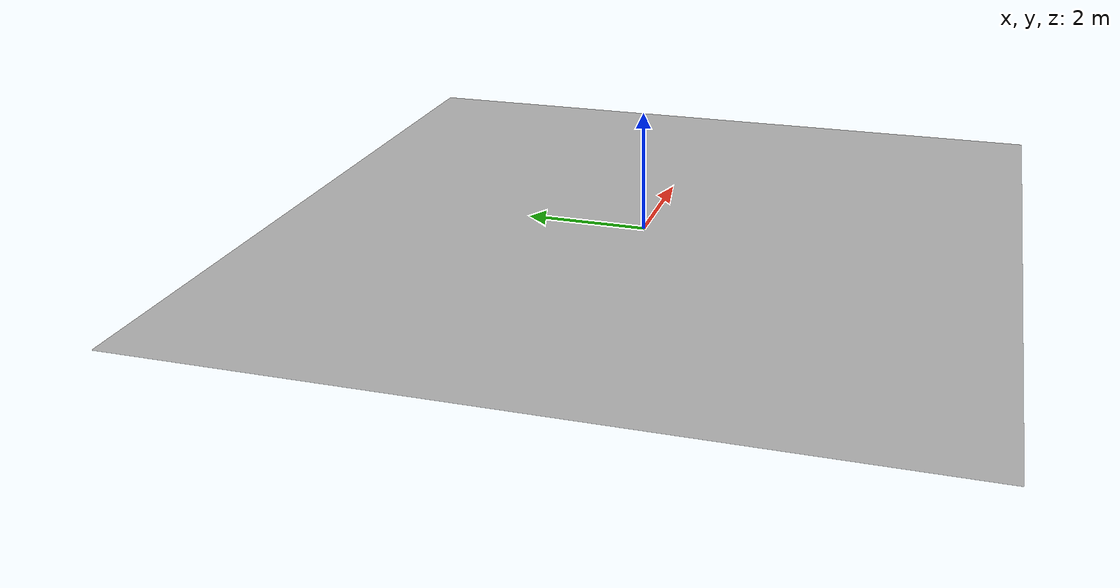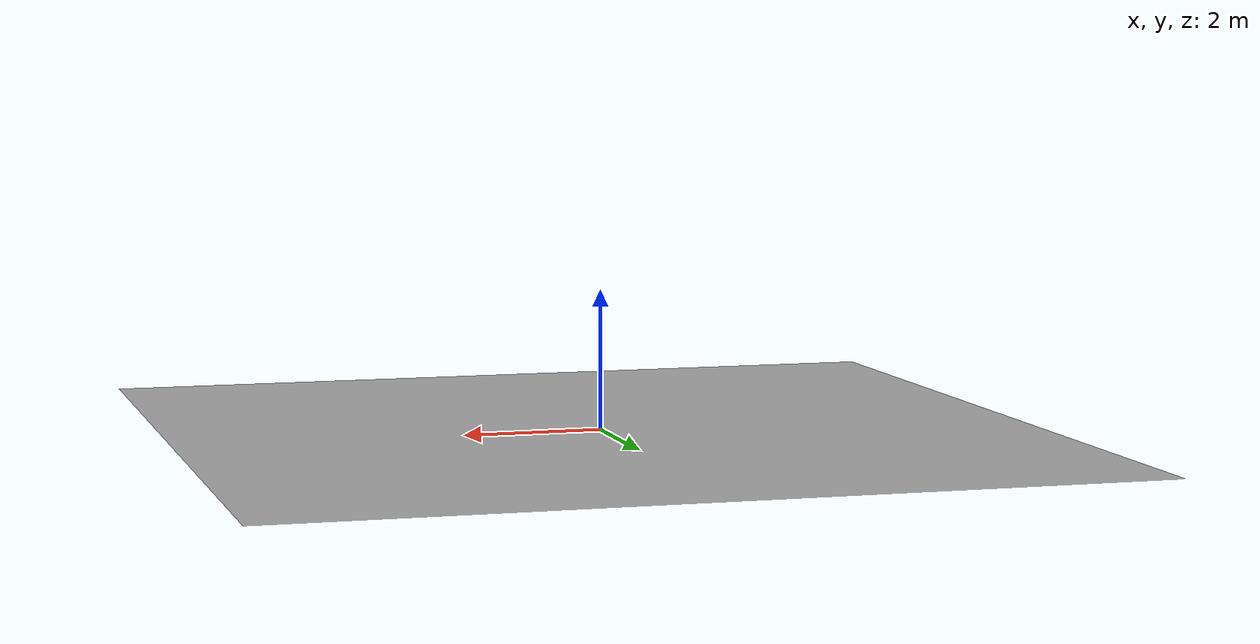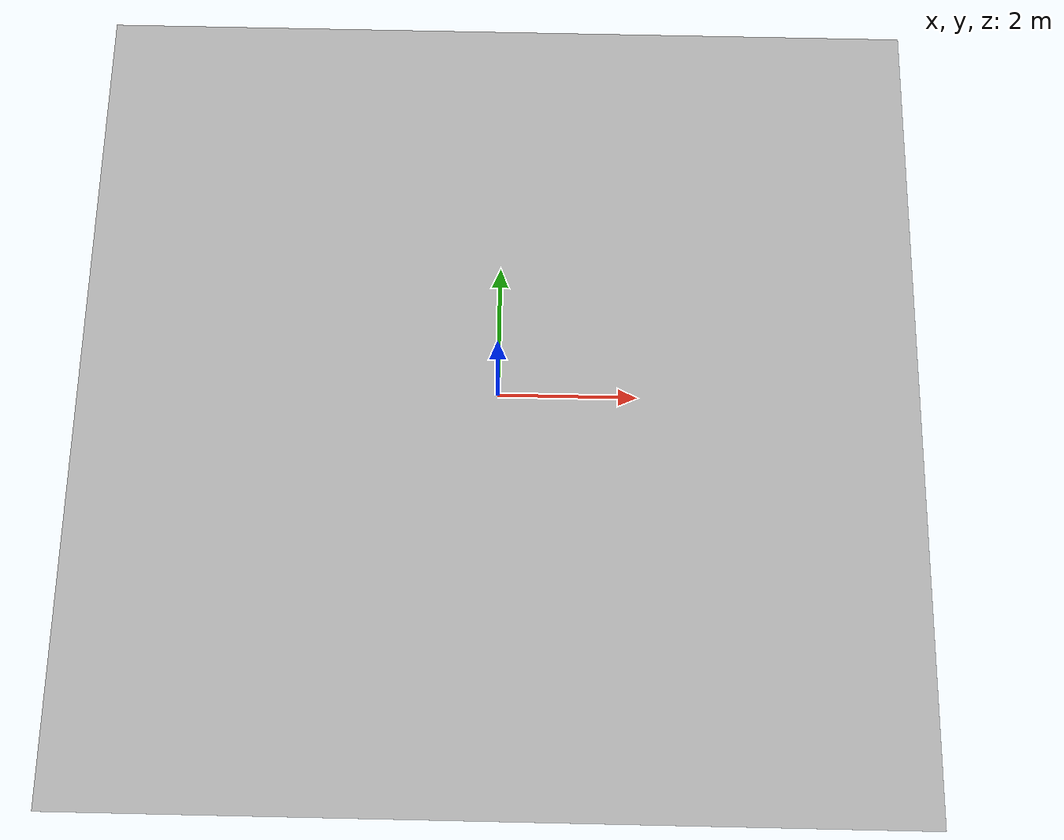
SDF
<?xml version='1.0'?>
<sdf version='1.8'>
  <model name='arena_terrain'>
    <static>1</static>
    <link name="link">
      <collision name="floor_collision">
        <geometry>
          <plane>
            <normal>0 0 1</normal>
            <size>2.4384 2.4384</size>
          </plane>
        </geometry>
        <surface>
          <friction>
            <ode>
              <mu>100</mu>
              <mu2>50</mu2>
            </ode>
          </friction>
        </surface>
      </collision>

      <visual name="visual">
        <cast_shadows>false</cast_shadows>
        <geometry>
          <mesh>
            <uri>model://arena_terrain/meshes/arena_terrain.dae</uri>
            <scale>5 5 1</scale>

          </mesh>
        </geometry>
      </visual>
    </link>
  </model>
</sdf>
